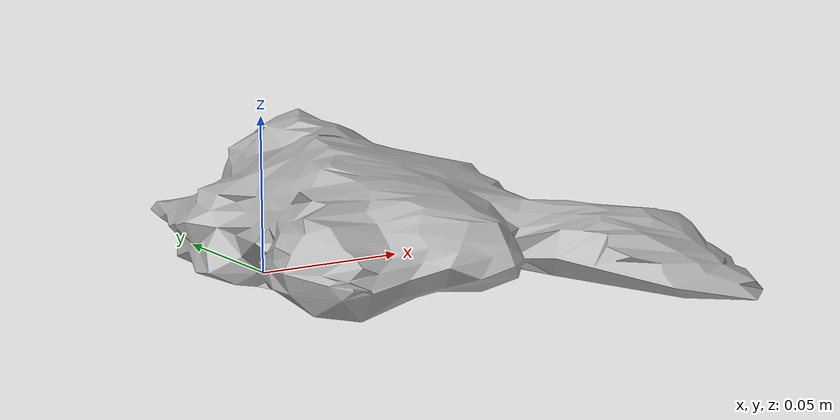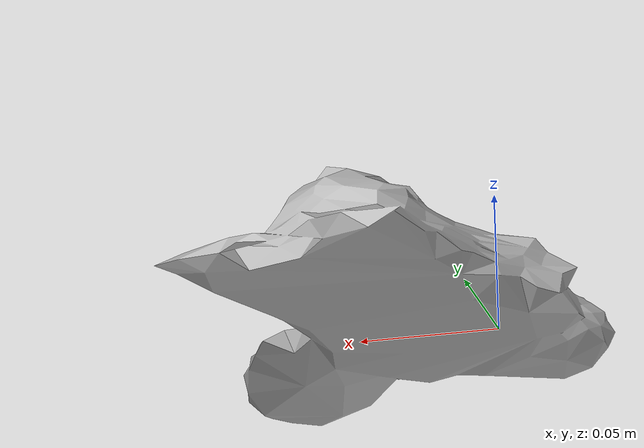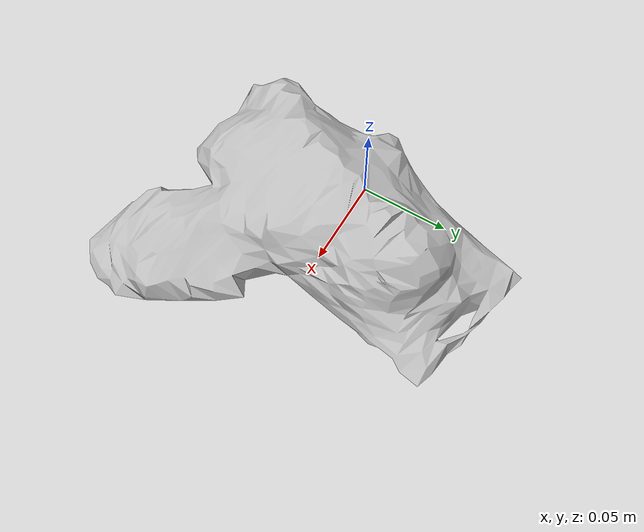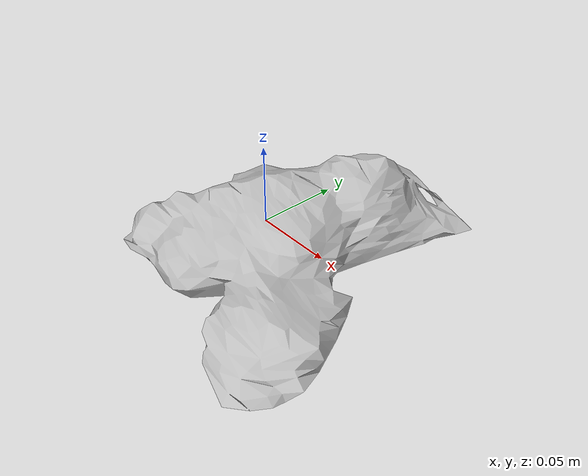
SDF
<?xml version="1.0" ?>
<sdf version="1.4">
  <model name="kong_sitting_frog_dog_toy">
    <link name="kong_sitting_frog_dog_toy_link">
      <inertial>
        <pose>0 0 0 0 0 0</pose>
        <mass>0.08</mass>
      </inertial>

      <visual name="kong_sitting_frog_dog_toy_visual">
        <pose>0 0 0 0 0 0</pose>
        <material>
          <script>
            <uri>model://kong_sitting_frog_dog_toy/materials/scripts</uri>
            <uri>model://kong_sitting_frog_dog_toy/materials/textures</uri>
            <name>kong_sitting_frog_dog_toy</name>
          </script>
        </material>
        <geometry>
          <mesh>
            <uri>model://kong_sitting_frog_dog_toy/meshes/kong_sitting_frog_dog_toy.dae</uri>
          </mesh>
        </geometry>
      </visual>

      <collision name="kong_sitting_frog_dog_toy_collision">
        <pose>0 0 0 0 0 0</pose>
        <geometry>
          <mesh>
            <uri>model://kong_sitting_frog_dog_toy/meshes/kong_sitting_frog_dog_toy.dae</uri>
          </mesh>
        </geometry>
        <surface>
          <friction>
            <ode>
              <mu>0.8</mu>
              <mu2>0.8</mu2>
            </ode>
          </friction>
        </surface>
      </collision>

    </link>
  </model>
</sdf>
